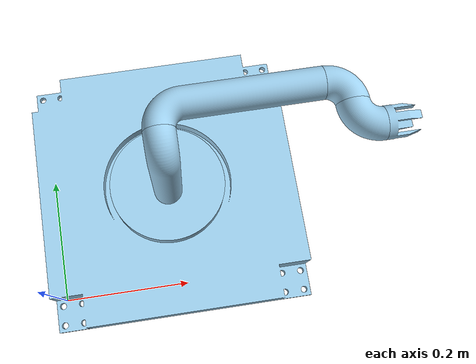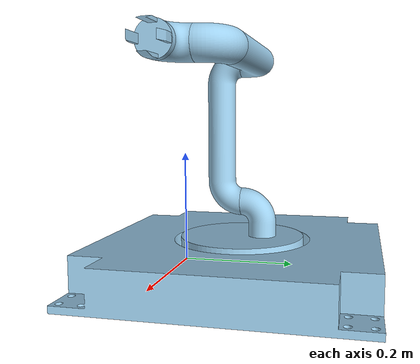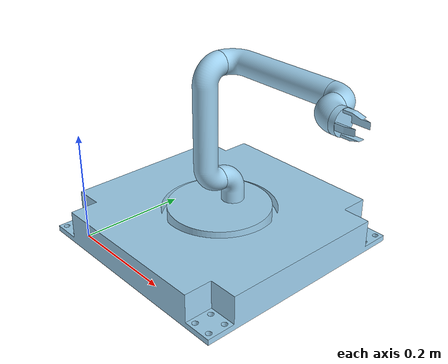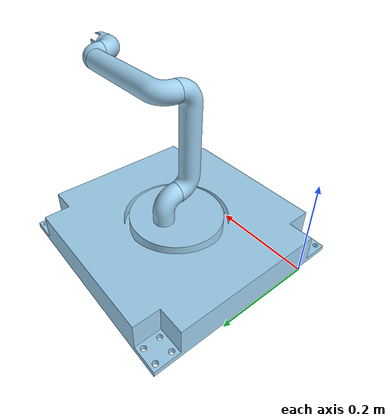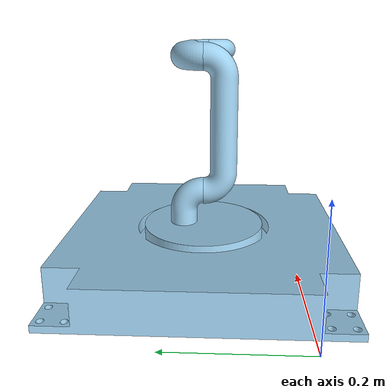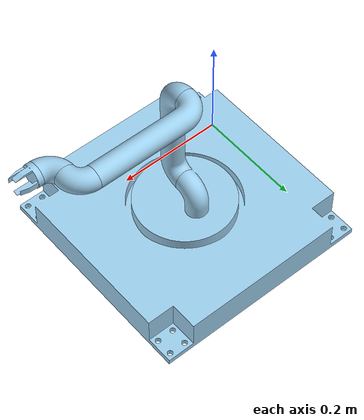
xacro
<?xml version="1.0" ?>
<!-- Generated using onshape-to-robot -->
<!-- Onshape https://cad.onshape.com/documents/0ef39c46ea465d1523ee3303/w/ca26927f6ae7d9c363a8fdc4/e/1a7fb5582a0644c32a9b202b -->
<robot xmlns:xacro="https://www.ros.org/wiki/xacro" name="robot">

  <link name="world"/>

  <joint name="world_to_platform" type="fixed">
    <origin xyz="0 0 0" rpy="0 0 0"/>
    <parent link="world"/>
    <child link="platform"/>
  </joint>

  <!-- Link platform -->
  <link name="platform">
    <inertial>
      <origin xyz="0.190018 0.149217 0.0575185" rpy="0 0 0"/>
      <mass value="1057"/>
      <inertia ixx="0.141352" ixy="0" ixz="0" iyy="0.141352" iyz="0" izz="0.276562"/>
    </inertial>
    <!-- Part platform -->
    <visual>
      <origin xyz="-0.00998193 -0.0507831 0.0292649" rpy="0 -0 0"/>
      <geometry>
        <mesh filename="package://my_bot/description/meshes/platform.stl"/>
      </geometry>
      <material name="platform_material">
        <color rgba="0.615686 0.811765 0.929412 1"/>
      </material>
    </visual>
    <collision>
      <origin xyz="-0.00998193 -0.0507831 0.0292649" rpy="0 -0 0"/>
      <geometry>
        <mesh filename="package://my_bot/description/meshes/platform.stl"/>
      </geometry>
    </collision>
  </link>
  <!-- Link link1 -->
  <link name="link1">
    <inertial>
      <origin xyz="-1.234e-18 -0.00277839 -0.0176014" rpy="0 0 0"/>
      <mass value="0.904581"/>
      <inertia ixx="0.00194002" ixy="0" ixz="0" iyy="0.00188172" iyz="-8.77097e-05" izz="0.00330021"/>
    </inertial>
    <!-- Part link1 -->
    <visual>
      <origin xyz="0 0 0" rpy="3.14159 -0 0"/>
      <geometry>
        <mesh filename="package://my_bot/description/meshes/link1.stl"/>
      </geometry>
      <material name="link1_material">
        <color rgba="0.615686 0.811765 0.929412 1"/>
      </material>
    </visual>
    <collision>
      <origin xyz="0 0 0" rpy="3.14159 -0 0"/>
      <geometry>
        <mesh filename="package://my_bot/description/meshes/link1.stl"/>
      </geometry>
    </collision>
  </link>
  <!-- Link link2 -->
  <link name="link2">
    <inertial>
      <origin xyz="0.1 -1.15382e-18 -0.0264677" rpy="0 0 0"/>
      <mass value="0.367956"/>
      <inertia ixx="8.77662e-05" ixy="0" ixz="0" iyy="0.00166422" iyz="0" izz="0.00165005"/>
    </inertial>
    <!-- Part link2 -->
    <visual>
      <origin xyz="0 0 0" rpy="3.14159 -0 0"/>
      <geometry>
        <mesh filename="package://my_bot/description/meshes/link2.stl"/>
      </geometry>
      <material name="link2_material">
        <color rgba="0.615686 0.811765 0.929412 1"/>
      </material>
    </visual>
    <collision>
      <origin xyz="0 0 0" rpy="3.14159 -0 0"/>
      <geometry>
        <mesh filename="package://my_bot/description/meshes/link2.stl"/>
      </geometry>
    </collision>
  </link>
  <!-- Link link3 -->
  <link name="link3">
    <inertial>
      <origin xyz="0.0919462 -1.29756e-18 -0.0280946" rpy="0 0 0"/>
      <mass value="0.341057"/>
      <inertia ixx="7.63563e-05" ixy="0" ixz="5.91062e-05" iyy="0.00135035" iyz="0" izz="0.00134221"/>
    </inertial>
    <!-- Part link3 -->
    <visual>
      <origin xyz="0 0 0" rpy="3.14159 -0 0"/>
      <geometry>
        <mesh filename="package://my_bot/description/meshes/link3.stl"/>
      </geometry>
      <material name="link3_material">
        <color rgba="0.615686 0.811765 0.929412 1"/>
      </material>
    </visual>
    <collision>
      <origin xyz="0 0 0" rpy="3.14159 -0 0"/>
      <geometry>
        <mesh filename="package://my_bot/description/meshes/link3.stl"/>
      </geometry>
    </collision>
  </link>
  <!-- Link link45 -->
  <link name="link45">
    <inertial>
      <origin xyz="0.00877934 2.11281e-18 -0.0212207" rpy="0 0 0"/>
      <mass value="0.074022"/>
      <inertia ixx="1.84821e-05" ixy="0" ixz="5.059e-06" iyy="2.21598e-05" iyz="0" izz="1.84821e-05"/>
    </inertial>
    <!-- Part link45 -->
    <visual>
      <origin xyz="0 0 0" rpy="-1.5708 -3.73721e-48 0"/>
      <geometry>
        <mesh filename="package://my_bot/description/meshes/link45.stl"/>
      </geometry>
      <material name="link45_material">
        <color rgba="0.615686 0.811765 0.929412 1"/>
      </material>
    </visual>
    <collision>
      <origin xyz="0 0 0" rpy="-1.5708 -3.73721e-48 0"/>
      <geometry>
        <mesh filename="package://my_bot/description/meshes/link45.stl"/>
      </geometry>
    </collision>
  </link>
  <!-- Link link45_2 -->
  <link name="link45_2">
    <inertial>
      <origin xyz="0.00877934 2.11281e-18 -0.0212207" rpy="0 0 0"/>
      <mass value="0.074022"/>
      <inertia ixx="1.84821e-05" ixy="0" ixz="5.059e-06" iyy="2.21598e-05" iyz="0" izz="1.84821e-05"/>
    </inertial>
    <!-- Part link45_2 -->
    <visual>
      <origin xyz="0 0 0" rpy="-1.5708 -4.30644e-48 0"/>
      <geometry>
        <mesh filename="package://my_bot/description/meshes/link45.stl"/>
      </geometry>
      <material name="link45_2_material">
        <color rgba="0.615686 0.811765 0.929412 1"/>
      </material>
    </visual>
    <collision>
      <origin xyz="0 0 0" rpy="-1.5708 -4.30644e-48 0"/>
      <geometry>
        <mesh filename="package://my_bot/description/meshes/link45.stl"/>
      </geometry>
    </collision>
  </link>
  <!-- Link link6 -->
  <link name="link6">
    <inertial>
      <origin xyz="-4.09334e-19 -6.82564e-19 -0.00871141" rpy="0 0 0"/>
      <mass value="0.020208"/>
      <inertia ixx="3.55959e-06" ixy="0" ixz="-3.02617e-53" iyy="3.55959e-06" iyz="0" izz="4.45159e-06"/>
    </inertial>
    <!-- Part link6 -->
    <visual>
      <origin xyz="0 0 0" rpy="3.14159 3.37599e-48 0"/>
      <geometry>
        <mesh filename="package://my_bot/description/meshes/link6.stl"/>
      </geometry>
      <material name="link6_material">
        <color rgba="0.615686 0.811765 0.929412 1"/>
      </material>
    </visual>
    <collision>
      <origin xyz="0 0 0" rpy="3.14159 3.37599e-48 0"/>
      <geometry>
        <mesh filename="package://my_bot/description/meshes/link6.stl"/>
      </geometry>
    </collision>
  </link>
  <!-- Joint from link45_2 to link6 -->
  <joint name="link6" type="revolute">
    <origin xyz="0.03 0 -0.03" rpy="1.64215e-47 -1.5708 0"/>
    <parent link="link45_2"/>
    <child link="link6"/>
    <axis xyz="0 0 1"/>
    <limit effort="10" velocity="10" lower="-3.141592653589793" upper="3.141592653589793"/>
  </joint>
  <!-- Joint from link45 to link45_2 -->
  <joint name="link5" type="revolute">
    <origin xyz="0.03 -5.55112e-17 -0.03" rpy="-3.14159 1.5708 0"/>
    <parent link="link45"/>
    <child link="link45_2"/>
    <axis xyz="0 0 1"/>
    <limit effort="10" velocity="10" lower="-3.141592653589793" upper="3.141592653589793"/>
  </joint>
  <!-- Joint from link3 to link45 -->
  <joint name="link4" type="revolute">
    <origin xyz="0.2 5.55112e-17 -0.03" rpy="-0 -1.5708 0"/>
    <parent link="link3"/>
    <child link="link45"/>
    <axis xyz="0 0 1"/>
    <limit effort="10" velocity="10" lower="-3.141592653589793" upper="3.141592653589793"/>
  </joint>
  <!-- Joint from link2 to link3 -->
  <joint name="link3" type="revolute">
    <origin xyz="0.2 0 0" rpy="3.14159 -0 1.5708"/>
    <parent link="link2"/>
    <child link="link3"/>
    <axis xyz="0 0 1"/>
    <limit effort="10" velocity="10" lower="-3.141592653589793" upper="3.141592653589793"/>
  </joint>
  <!-- Joint from link1 to link2 -->
  <joint name="link2" type="revolute">
    <origin xyz="-2.77556e-17 0 -0.075" rpy="1.5708 1.5708 0"/>
    <parent link="link1"/>
    <child link="link2"/>
    <axis xyz="0 0 1"/>
    <limit effort="10" velocity="10" lower="-3.141592653589793" upper="3.141592653589793"/>
  </joint>
  <!-- Joint from platform to link1 -->
  <joint name="link1" type="revolute">
    <origin xyz="0.190018 0.149217 0.0692649" rpy="3.14159 -0 0"/>
    <parent link="platform"/>
    <child link="link1"/>
    <axis xyz="0 0 1"/>
    <limit effort="10" velocity="10" lower="-3.141592653589793" upper="3.141592653589793"/>
  </joint>
</robot>
